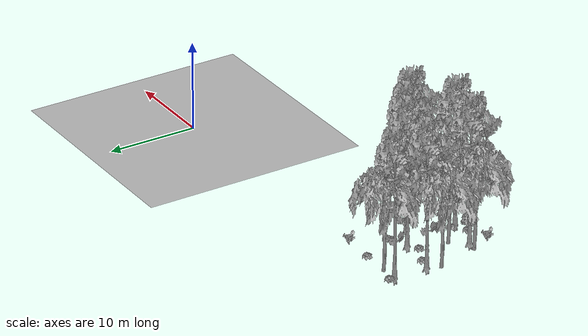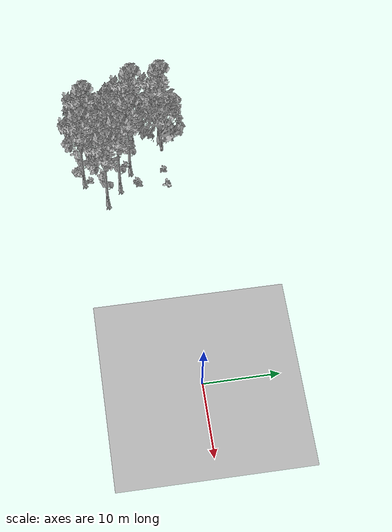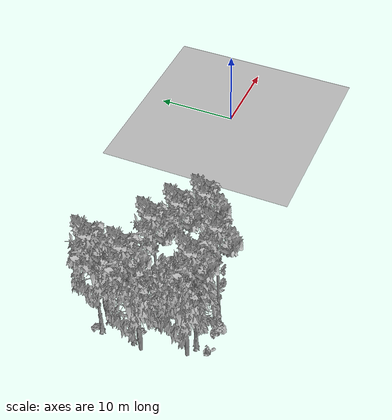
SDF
<sdf version="1.7">
 <world name="default">
  <model name="ground_plane">
   <static>1</static>
   <link name="link">
    <collision name="collision">
     <pose>-50 0 0 0 -0 0</pose>
     <geometry><plane><normal>0 0 1</normal><size>80 80</size></plane></geometry>
     <surface><contact><ode><min_depth>0.01</min_depth><max_vel>0</max_vel></ode></contact></surface>
    </collision>
    <visual name="grass">
     <cast_shadows>0</cast_shadows>
     <geometry>
      <mesh>
       <scale>0.46714285714285714 0.46714285714285714 0.1</scale>
       <uri>file://grass_plane/meshes/grass_plane.dae</uri>
      </mesh>
     </geometry>
    </visual>
   </link>
  </model>
  <model name="Tree 16">
   <static>1</static>
   <pose>-36.08321133468076 -0.38418183602739475 0 1.57079 -0 0</pose>
   <link name="link">
    <collision name="collision">
     <geometry><mesh><scale>3.5 5 3.5</scale><uri>model://tree_2/meshes/tree_2.obj</uri></mesh></geometry>
    </collision>
    <visual name="visual">
     <geometry><mesh><scale>3.5 5 3.5</scale><uri>model://tree_2/meshes/tree_2.obj</uri></mesh></geometry>
    </visual>
   </link>
  </model>
  <model name="Tree 146">
   <static>1</static>
   <pose>-31.80924837945192 -11.737072016897727 0 1.57079 -0 0</pose>
   <link name="link">
    <collision name="collision">
     <geometry><mesh><scale>3.5 5 3.5</scale><uri>model://tree_9/meshes/tree_9.obj</uri></mesh></geometry>
    </collision>
    <visual name="visual">
     <geometry><mesh><scale>3.5 5 3.5</scale><uri>model://tree_9/meshes/tree_9.obj</uri></mesh></geometry>
    </visual>
   </link>
  </model>
  <model name="Tree 147">
   <static>1</static>
   <pose>-38.522551274039486 -5.633040588272081 0 1.57079 -0 0</pose>
   <link name="link">
    <collision name="collision">
     <geometry><mesh><scale>3.5 5 3.5</scale><uri>model://tree_2/meshes/tree_2.obj</uri></mesh></geometry>
    </collision>
    <visual name="visual">
     <geometry><mesh><scale>3.5 5 3.5</scale><uri>model://tree_2/meshes/tree_2.obj</uri></mesh></geometry>
    </visual>
   </link>
  </model>
  <model name="Tree 161">
   <static>1</static>
   <pose>-35.74117782479591 -10.823629138976436 0 1.57079 -0 0</pose>
   <link name="link">
    <collision name="collision">
     <geometry><mesh><scale>3.5 5 3.5</scale><uri>model://tree_9/meshes/tree_9.obj</uri></mesh></geometry>
    </collision>
    <visual name="visual">
     <geometry><mesh><scale>3.5 5 3.5</scale><uri>model://tree_9/meshes/tree_9.obj</uri></mesh></geometry>
    </visual>
   </link>
  </model>
  <model name="Tree 220">
   <static>1</static>
   <pose>-34.84483253101458 -8.944775079322405 0 1.57079 -0 0</pose>
   <link name="link">
    <collision name="collision">
     <geometry><mesh><scale>3.5 5 3.5</scale><uri>model://tree_2/meshes/tree_2.obj</uri></mesh></geometry>
    </collision>
    <visual name="visual">
     <geometry><mesh><scale>3.5 5 3.5</scale><uri>model://tree_2/meshes/tree_2.obj</uri></mesh></geometry>
    </visual>
   </link>
  </model>
  <model name="Tree 315">
   <static>1</static>
   <pose>-32.893017623481235 -5.20916980057288 0 1.57079 -0 0</pose>
   <link name="link">
    <collision name="collision">
     <geometry><mesh><scale>3.5 5 3.5</scale><uri>model://tree_9/meshes/tree_9.obj</uri></mesh></geometry>
    </collision>
    <visual name="visual">
     <geometry><mesh><scale>3.5 5 3.5</scale><uri>model://tree_9/meshes/tree_9.obj</uri></mesh></geometry>
    </visual>
   </link>
  </model>
  <model name="Tree 340">
   <static>1</static>
   <pose>-37.27504460718591 -10.424029978983107 0 1.57079 -0 0</pose>
   <link name="link">
    <collision name="collision">
     <geometry><mesh><scale>3.5 5 3.5</scale><uri>model://tree_2/meshes/tree_2.obj</uri></mesh></geometry>
    </collision>
    <visual name="visual">
     <geometry><mesh><scale>3.5 5 3.5</scale><uri>model://tree_2/meshes/tree_2.obj</uri></mesh></geometry>
    </visual>
   </link>
  </model>
  <model name="Tree 436">
   <static>1</static>
   <pose>-37.62458076678618 -4.378062343213294 0 1.57079 -0 0</pose>
   <link name="link">
    <collision name="collision">
     <geometry><mesh><scale>3.5 5 3.5</scale><uri>model://tree_9/meshes/tree_9.obj</uri></mesh></geometry>
    </collision>
    <visual name="visual">
     <geometry><mesh><scale>3.5 5 3.5</scale><uri>model://tree_9/meshes/tree_9.obj</uri></mesh></geometry>
    </visual>
   </link>
  </model>
  <model name="Tree 474">
   <static>1</static>
   <pose>-30.20599665504755 -6.900608710835961 0 1.57079 -0 0</pose>
   <link name="link">
    <collision name="collision">
     <geometry><mesh><scale>3.5 5 3.5</scale><uri>model://tree_9/meshes/tree_9.obj</uri></mesh></geometry>
    </collision>
    <visual name="visual">
     <geometry><mesh><scale>3.5 5 3.5</scale><uri>model://tree_9/meshes/tree_9.obj</uri></mesh></geometry>
    </visual>
   </link>
  </model>
  <model name="Tree 515">
   <static>1</static>
   <pose>-27.958845252022158 -8.86060978110498 0 1.57079 -0 0</pose>
   <link name="link">
    <collision name="collision">
     <geometry><mesh><scale>3.5 5 3.5</scale><uri>model://tree_9/meshes/tree_9.obj</uri></mesh></geometry>
    </collision>
    <visual name="visual">
     <geometry><mesh><scale>3.5 5 3.5</scale><uri>model://tree_9/meshes/tree_9.obj</uri></mesh></geometry>
    </visual>
   </link>
  </model>
  <model name="Tree 519">
   <static>1</static>
   <pose>-37.60051971099041 -0.5662967687000346 0 1.57079 -0 0</pose>
   <link name="link">
    <collision name="collision">
     <geometry><mesh><scale>3.5 5 3.5</scale><uri>model://tree_9/meshes/tree_9.obj</uri></mesh></geometry>
    </collision>
    <visual name="visual">
     <geometry><mesh><scale>3.5 5 3.5</scale><uri>model://tree_9/meshes/tree_9.obj</uri></mesh></geometry>
    </visual>
   </link>
  </model>
  <model name="Bush 2">
   <static>1</static>
   <pose>-33.4009601181691 -12.54078330054881 0 1.57079 -0 0</pose>
   <link name="link">
    <collision name="collision">
     <geometry><mesh><scale>2 2 2</scale><uri>model://bush_1/meshes/bush_1.obj</uri></mesh></geometry>
     <surface><contact><collide_without_contact>false</collide_without_contact></contact></surface>
    </collision>
    <visual name="visual">
     <geometry><mesh><scale>2 2 2</scale><uri>model://bush_1/meshes/bush_1.obj</uri></mesh></geometry>
    </visual>
   </link>
  </model>
  <model name="Bush 13">
   <static>1</static>
   <pose>-33.673178996001454 -12.089366016876689 0 1.57079 -0 0</pose>
   <link name="link">
    <collision name="collision">
     <geometry><mesh><scale>2 2 2</scale><uri>model://bush_2/meshes/bush_2.obj</uri></mesh></geometry>
     <surface><contact><collide_without_contact>false</collide_without_contact></contact></surface>
    </collision>
    <visual name="visual">
     <geometry><mesh><scale>2 2 2</scale><uri>model://bush_2/meshes/bush_2.obj</uri></mesh></geometry>
    </visual>
   </link>
  </model>
  <model name="Bush 70">
   <static>1</static>
   <pose>-32.31831066823677 -10.929965702011913 0 1.57079 -0 0</pose>
   <link name="link">
    <collision name="collision">
     <geometry><mesh><scale>2 2 2</scale><uri>model://bush_2/meshes/bush_2.obj</uri></mesh></geometry>
     <surface><contact><collide_without_contact>false</collide_without_contact></contact></surface>
    </collision>
    <visual name="visual">
     <geometry><mesh><scale>2 2 2</scale><uri>model://bush_2/meshes/bush_2.obj</uri></mesh></geometry>
    </visual>
   </link>
  </model>
  <model name="Bush 97">
   <static>1</static>
   <pose>-31.40815041193343 -4.5012992426402505 0 1.57079 -0 0</pose>
   <link name="link">
    <collision name="collision">
     <geometry><mesh><scale>2 2 2</scale><uri>model://bush_2/meshes/bush_2.obj</uri></mesh></geometry>
     <surface><contact><collide_without_contact>false</collide_without_contact></contact></surface>
    </collision>
    <visual name="visual">
     <geometry><mesh><scale>2 2 2</scale><uri>model://bush_2/meshes/bush_2.obj</uri></mesh></geometry>
    </visual>
   </link>
  </model>
  <model name="Bush 151">
   <static>1</static>
   <pose>-36.437159670415504 -4.710022992653293 0 1.57079 -0 0</pose>
   <link name="link">
    <collision name="collision">
     <geometry><mesh><scale>2 2 2</scale><uri>model://bush_2/meshes/bush_2.obj</uri></mesh></geometry>
     <surface><contact><collide_without_contact>false</collide_without_contact></contact></surface>
    </collision>
    <visual name="visual">
     <geometry><mesh><scale>2 2 2</scale><uri>model://bush_2/meshes/bush_2.obj</uri></mesh></geometry>
    </visual>
   </link>
  </model>
  <model name="Bush 204">
   <static>1</static>
   <pose>-32.41614869966215 -9.133168243761656 0 1.57079 -0 0</pose>
   <link name="link">
    <collision name="collision">
     <geometry><mesh><scale>2 2 2</scale><uri>model://bush_0/meshes/bush_0.obj</uri></mesh></geometry>
     <surface><contact><collide_without_contact>false</collide_without_contact></contact></surface>
    </collision>
    <visual name="visual">
     <geometry><mesh><scale>2 2 2</scale><uri>model://bush_0/meshes/bush_0.obj</uri></mesh></geometry>
    </visual>
   </link>
  </model>
  <model name="Bush 234">
   <static>1</static>
   <pose>-36.438140736259705 -12.491798199161892 0 1.57079 -0 0</pose>
   <link name="link">
    <collision name="collision">
     <geometry><mesh><scale>2 2 2</scale><uri>model://bush_0/meshes/bush_0.obj</uri></mesh></geometry>
     <surface><contact><collide_without_contact>false</collide_without_contact></contact></surface>
    </collision>
    <visual name="visual">
     <geometry><mesh><scale>2 2 2</scale><uri>model://bush_0/meshes/bush_0.obj</uri></mesh></geometry>
    </visual>
   </link>
  </model>
  <model name="Bush 533">
   <static>1</static>
   <pose>-34.24328181356998 -5.824788760097903 0 1.57079 -0 0</pose>
   <link name="link">
    <collision name="collision">
     <geometry><mesh><scale>2 2 2</scale><uri>model://bush_2/meshes/bush_2.obj</uri></mesh></geometry>
     <surface><contact><collide_without_contact>false</collide_without_contact></contact></surface>
    </collision>
    <visual name="visual">
     <geometry><mesh><scale>2 2 2</scale><uri>model://bush_2/meshes/bush_2.obj</uri></mesh></geometry>
    </visual>
   </link>
  </model>
  <model name="Bush 537">
   <static>1</static>
   <pose>-37.780254276282434 0.06993582073775428 0 1.57079 -0 0</pose>
   <link name="link">
    <collision name="collision">
     <geometry><mesh><scale>2 2 2</scale><uri>model://bush_2/meshes/bush_2.obj</uri></mesh></geometry>
     <surface><contact><collide_without_contact>false</collide_without_contact></contact></surface>
    </collision>
    <visual name="visual">
     <geometry><mesh><scale>2 2 2</scale><uri>model://bush_2/meshes/bush_2.obj</uri></mesh></geometry>
    </visual>
   </link>
  </model>
  <model name="Bush 544">
   <static>1</static>
   <pose>-32.78170987122424 -0.5666931624855494 0 1.57079 -0 0</pose>
   <link name="link">
    <collision name="collision">
     <geometry><mesh><scale>2 2 2</scale><uri>model://bush_2/meshes/bush_2.obj</uri></mesh></geometry>
     <surface><contact><collide_without_contact>false</collide_without_contact></contact></surface>
    </collision>
    <visual name="visual">
     <geometry><mesh><scale>2 2 2</scale><uri>model://bush_2/meshes/bush_2.obj</uri></mesh></geometry>
    </visual>
   </link>
  </model>
  <model name="Bush 606">
   <static>1</static>
   <pose>-30.85149035185966 -4.226563893609672 0 1.57079 -0 0</pose>
   <link name="link">
    <collision name="collision">
     <geometry><mesh><scale>2 2 2</scale><uri>model://bush_2/meshes/bush_2.obj</uri></mesh></geometry>
     <surface><contact><collide_without_contact>false</collide_without_contact></contact></surface>
    </collision>
    <visual name="visual">
     <geometry><mesh><scale>2 2 2</scale><uri>model://bush_2/meshes/bush_2.obj</uri></mesh></geometry>
    </visual>
   </link>
  </model>
  <model name="Bush 616">
   <static>1</static>
   <pose>-29.68374830918463 -0.33967250924993664 0 1.57079 -0 0</pose>
   <link name="link">
    <collision name="collision">
     <geometry><mesh><scale>2 2 2</scale><uri>model://bush_0/meshes/bush_0.obj</uri></mesh></geometry>
     <surface><contact><collide_without_contact>false</collide_without_contact></contact></surface>
    </collision>
    <visual name="visual">
     <geometry><mesh><scale>2 2 2</scale><uri>model://bush_0/meshes/bush_0.obj</uri></mesh></geometry>
    </visual>
   </link>
  </model>
 </world>
</sdf>
